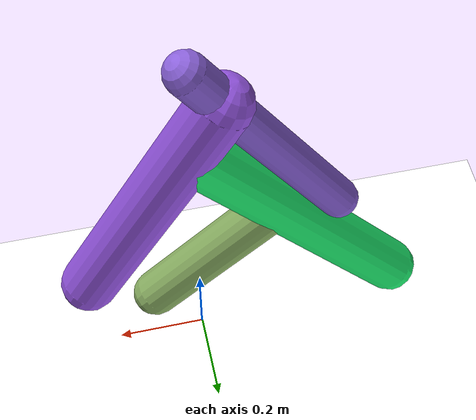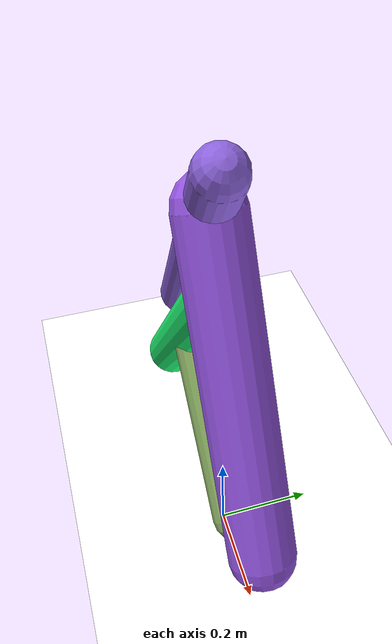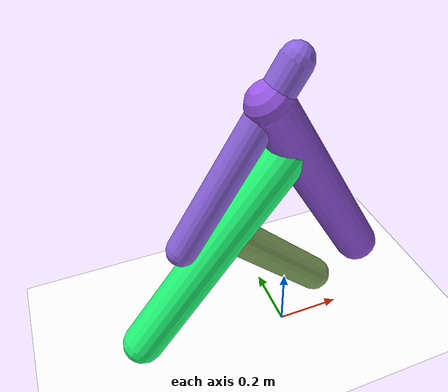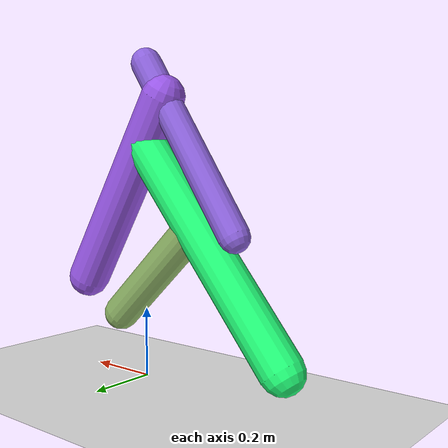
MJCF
<mujoco model="morphology">
  <option timestep="0.01"/>
  <default>
    <default class="/"/>
    <default class="0/"/>
    <default class="0/1/"/>
    <default class="0/1/2/"/>
    <default class="0/1/2/3/"/>
  </default>
  <asset>
    <texture name="texplane" type="2d" builtin="checker" rgb1="0.10000000000000001 0.20000000000000001 0.29999999999999999" rgb2="0.20000000000000001 0.29999999999999999 0.40000000000000002" width="300" height="300"/>
    <material name="MatPlane" class="/" texture="texplane" texrepeat="20 20" specular="1" shininess="1" reflectance="0.5"/>
  </asset>
  <worldbody>
    <light name="//unnamed_light_0" class="/" directional="true" pos="0 0 1.5" dir="0 0 -1.3" cutoff="100" exponent="1" diffuse="1 1 1" specular="0.10000000000000001 0.10000000000000001 0.10000000000000001"/>
    <geom name="ground" class="/" type="plane" size="15 15 0.5" material="MatPlane" rgba="1 1 1 1"/>
    <site name="body" class="/" size="9.9999999999999995e-07 9.9999999999999995e-07 9.9999999999999995e-07" pos="0 0 0.90381399393081663"/>
    <body pos="0 0 0.90381399393081663" name="0/">
      <joint name="0/rootx/" class="/" type="slide" axis="1 0 0" limited="false" stiffness="0" armature="0" damping="0"/>
      <joint name="0/rootz/" class="/" type="slide" axis="0 0 1" limited="false" stiffness="0" armature="0" damping="0"/>
      <joint name="0/rooty/" class="/" type="hinge" axis="0 1 0" limited="false" stiffness="0" armature="0" damping="0"/>
      <geom name="0/geom" class="0/" type="capsule" contype="1" conaffinity="1" condim="3" size="0.043940525164767333" rgba="0.54969183764193585 0.38858958405317456 0.86591289798814153 1" friction="0.59999999999999998 0.10000000000000001 0.10000000000000001" fromto="0 0 0 -0.31205609753287822 0 -0.47526403198584821"/>
      <site name="0/end0" class="0/" size="0.0050000000000000001" pos="-0.31205609753287822 0 -0.47526403198584821"/>
      <site name="0/attach1" class="0/" size="9.9999999999999995e-07 9.9999999999999995e-07 9.9999999999999995e-07" pos="-0.064771662720624637 0 -0.098647781044522473"/>
      <body pos="-0.064771662720624637 0 -0.098647781044522473" name="0/1/">
        <joint name="0/1/joint/" class="0/" type="hinge" axis="0 1 0" limited="true" range="-33.739098263311234 33.739098263311234"/>
        <geom name="0/1/geom" class="0/1/" type="capsule" contype="1" conaffinity="1" condim="3" size="0.062762348958511821" rgba="0.59616151354260272 0.34229816423710691 0.90713712067338514 1" friction="0.59999999999999998 0.10000000000000001 0.10000000000000001" fromto="0 0 0 0.31127068671251812 0 -0.53704545454019392"/>
        <site name="0/1/end1" class="0/1/" size="0.0050000000000000001" pos="0.31127068671251812 0 -0.53704545454019392"/>
        <site name="0/1/attach2" class="0/1/" size="9.9999999999999995e-07 9.9999999999999995e-07 9.9999999999999995e-07" pos="0.0714249351282263 0 -0.12323176704033509"/>
        <body pos="0.0714249351282263 0 -0.12323176704033509" name="0/1/2/">
          <joint name="0/1/2/joint/" class="0/1/" type="hinge" axis="0 1 0" limited="true" range="-39.913077703337564 39.913077703337564"/>
          <geom name="0/1/2/geom" class="0/1/2/" type="capsule" contype="1" conaffinity="1" condim="3" size="0.061421513320413762" rgba="0.12901420678057196 0.99113086914635229 0.46956386871051126 1" friction="0.59999999999999998 0.10000000000000001 0.10000000000000001" fromto="0 0 0 -0.46866965544440992 0 -0.58193443454538529"/>
          <site name="0/1/2/end2" class="0/1/2/" size="0.0050000000000000001" pos="-0.46866965544440992 0 -0.58193443454538529"/>
          <site name="0/1/2/attach3" class="0/1/2/" size="9.9999999999999995e-07 9.9999999999999995e-07 9.9999999999999995e-07" pos="-0.18707322865789158 0 -0.23228376805061232"/>
          <body pos="-0.18707322865789158 0 -0.23228376805061232" name="0/1/2/3/">
            <joint name="0/1/2/3/joint/" class="0/1/2/" type="hinge" axis="0 1 0" limited="true" range="-54.505503008496007 54.505503008496007"/>
            <geom name="0/1/2/3/geom" class="0/1/2/3/" type="capsule" contype="1" conaffinity="1" condim="3" size="0.051699010116674424" rgba="0.54667975566150329 0.69365798318701644 0.39269715301307717 1" friction="0.59999999999999998 0.10000000000000001 0.10000000000000001" fromto="0 0 0 0.28388425172091369 0 -0.27683902980470815"/>
            <site name="0/1/2/3/end3" class="0/1/2/3/" size="0.0050000000000000001" pos="0.28388425172091369 0 -0.27683902980470815"/>
          </body>
        </body>
      </body>
      <camera name="0/side" class="0/" mode="trackcom" pos="0.40000000000000002 -4 0.20000000000000001" quat="0.70699999999999996 0.70699999999999996 0 0"/>
    </body>
  </worldbody>
  <actuator>
    <motor name="0/1/motor" class="0/1/" ctrllimited="true" ctrlrange="-1 1" gear="88" joint="0/1/joint/"/>
    <motor name="0/1/2/motor" class="0/1/2/" ctrllimited="true" ctrlrange="-1 1" gear="81" joint="0/1/2/joint/"/>
    <motor name="0/1/2/3/motor" class="0/1/2/3/" ctrllimited="true" ctrlrange="-1 1" gear="72" joint="0/1/2/3/joint/"/>
  </actuator>
  <sensor>
    <subtreelinvel name="velocity" body="0/"/>
  </sensor>
</mujoco>
